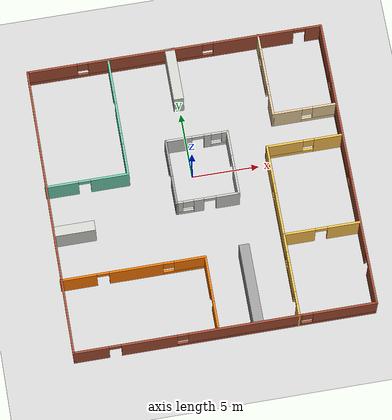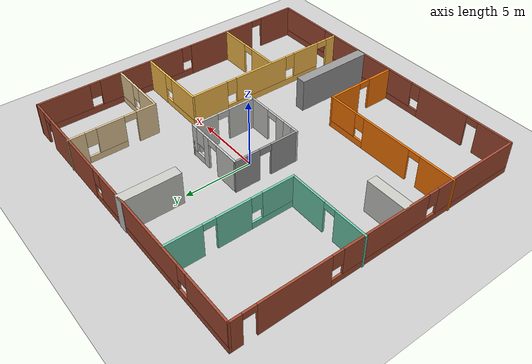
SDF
<sdf version="1.6">
 <world name="default">
  <model name="ground_plane">
   <static>1</static>
   <link name="link">
    <collision name="collision">
     <geometry><plane><normal>0 0 1</normal><size>100 100</size></plane></geometry>
     <surface><friction><ode><mu>100</mu><mu2>50</mu2></ode></friction></surface>
    </collision>
    <visual name="visual">
     <cast_shadows>0</cast_shadows>
     <geometry><plane><normal>0 0 1</normal><size>100 100</size></plane></geometry>
     <material>
      <script><uri>file://media/materials/scripts/gazebo.material</uri><name>Gazebo/Grey</name></script>
     </material>
    </visual>
   </link>
  </model>
  <model name="floor">
   <pose>0.248 -1.57026 0 0 -0 0</pose>
   <link name="Wall_24">
    <pose>-11.0156 -0.019394 0 0 -0 -1.5708</pose>
    <visual name="Wall_24_Visual_0">
     <pose>-10.5538 0 1.25 0 -0 0</pose>
     <geometry><box><size>0.892447 0.15 2.5</size></box></geometry>
     <material>
      <script><uri>file://media/materials/scripts/gazebo.material</uri><name>Gazebo/Bricks</name></script>
      <ambient>0.760784 0.662745 0.627451 1</ambient>
     </material>
     <meta><layer>0</layer></meta>
    </visual>
    <collision name="Wall_24_Collision_0">
     <geometry><box><size>0.892447 0.15 2.5</size></box></geometry>
     <pose>-10.5538 0 1.25 0 -0 0</pose>
    </collision>
    <visual name="Wall_24_Visual_1">
     <pose>-6.69897 0 1.25 0 -0 0</pose>
     <geometry><box><size>5.01718 0.15 2.5</size></box></geometry>
     <material>
      <script><uri>file://media/materials/scripts/gazebo.material</uri><name>Gazebo/Bricks</name></script>
      <ambient>0.760784 0.662745 0.627451 1</ambient>
     </material>
     <meta><layer>0</layer></meta>
    </visual>
    <collision name="Wall_24_Collision_1">
     <geometry><box><size>5.01718 0.15 2.5</size></box></geometry>
     <pose>-6.69897 0 1.25 0 -0 0</pose>
    </collision>
    <visual name="Wall_24_Visual_2">
     <pose>3.40481 0 0.25 0 -0 0</pose>
     <geometry><box><size>15.1904 0.15 0.5</size></box></geometry>
     <material>
      <script><uri>file://media/materials/scripts/gazebo.material</uri><name>Gazebo/Bricks</name></script>
      <ambient>0.760784 0.662745 0.627451 1</ambient>
     </material>
     <meta><layer>0</layer></meta>
    </visual>
    <collision name="Wall_24_Collision_2">
     <geometry><box><size>15.1904 0.15 0.5</size></box></geometry>
     <pose>3.40481 0 0.25 0 -0 0</pose>
    </collision>
    <visual name="Wall_24_Visual_3">
     <pose>-0.044953 0 1.5 0 -0 0</pose>
     <geometry><box><size>6.69085 0.15 2</size></box></geometry>
     <material>
      <script><uri>file://media/materials/scripts/gazebo.material</uri><name>Gazebo/Bricks</name></script>
      <ambient>0.760784 0.662745 0.627451 1</ambient>
     </material>
     <meta><layer>0</layer></meta>
    </visual>
    <collision name="Wall_24_Collision_3">
     <geometry><box><size>6.69085 0.15 2</size></box></geometry>
     <pose>-0.044953 0 1.5 0 -0 0</pose>
    </collision>
    <visual name="Wall_24_Visual_4">
     <pose>7.55023 0 1.5 0 -0 0</pose>
     <geometry><box><size>6.89953 0.15 2</size></box></geometry>
     <material>
      <script><uri>file://media/materials/scripts/gazebo.material</uri><name>Gazebo/Bricks</name></script>
      <ambient>0.760784 0.662745 0.627451 1</ambient>
     </material>
     <meta><layer>0</layer></meta>
    </visual>
    <collision name="Wall_24_Collision_4">
     <geometry><box><size>6.89953 0.15 2</size></box></geometry>
     <pose>7.55023 0 1.5 0 -0 0</pose>
    </collision>
    <visual name="Wall_24_Visual_5">
     <pose>-3.79038 0 1.9 0 -0 0</pose>
     <geometry><box><size>0.8 0.15 1.2</size></box></geometry>
     <material>
      <script><uri>file://media/materials/scripts/gazebo.material</uri><name>Gazebo/Bricks</name></script>
      <ambient>0.760784 0.662745 0.627451 1</ambient>
     </material>
     <meta><layer>0</layer></meta>
    </visual>
    <collision name="Wall_24_Collision_5">
     <geometry><box><size>0.8 0.15 1.2</size></box></geometry>
     <pose>-3.79038 0 1.9 0 -0 0</pose>
    </collision>
    <visual name="Wall_24_Visual_6">
     <pose>3.70047 0 1.9 0 -0 0</pose>
     <geometry><box><size>0.8 0.15 1.2</size></box></geometry>
     <material>
      <script><uri>file://media/materials/scripts/gazebo.material</uri><name>Gazebo/Bricks</name></script>
      <ambient>0.760784 0.662745 0.627451 1</ambient>
     </material>
     <meta><layer>0</layer></meta>
    </visual>
    <collision name="Wall_24_Collision_6">
     <geometry><box><size>0.8 0.15 1.2</size></box></geometry>
     <pose>3.70047 0 1.9 0 -0 0</pose>
    </collision>
    <visual name="Wall_24_Visual_7">
     <pose>-9.65755 0 2.25 0 -0 0</pose>
     <geometry><box><size>0.9 0.15 0.5</size></box></geometry>
     <material>
      <script><uri>file://media/materials/scripts/gazebo.material</uri><name>Gazebo/Bricks</name></script>
      <ambient>0.760784 0.662745 0.627451 1</ambient>
     </material>
     <meta><layer>0</layer></meta>
    </visual>
    <collision name="Wall_24_Collision_7">
     <geometry><box><size>0.9 0.15 0.5</size></box></geometry>
     <pose>-9.65755 0 2.25 0 -0 0</pose>
    </collision>
   </link>
   <link name="Wall_25">
    <pose>0.034373 -10.9444 0 0 -0 0</pose>
    <visual name="Wall_25_Visual_0">
     <pose>-9.80645 0 1.25 0 -0 0</pose>
     <geometry><box><size>2.63709 0.15 2.5</size></box></geometry>
     <material>
      <script><uri>file://media/materials/scripts/gazebo.material</uri><name>Gazebo/Bricks</name></script>
      <ambient>0.760784 0.662745 0.627451 1</ambient>
     </material>
     <meta><layer>0</layer></meta>
    </visual>
    <collision name="Wall_25_Collision_0">
     <geometry><box><size>2.63709 0.15 2.5</size></box></geometry>
     <pose>-9.80645 0 1.25 0 -0 0</pose>
    </collision>
    <visual name="Wall_25_Visual_1">
     <pose>-5.54747 0 1.25 0 -0 0</pose>
     <geometry><box><size>4.08088 0.15 2.5</size></box></geometry>
     <material>
      <script><uri>file://media/materials/scripts/gazebo.material</uri><name>Gazebo/Bricks</name></script>
      <ambient>0.760784 0.662745 0.627451 1</ambient>
     </material>
     <meta><layer>0</layer></meta>
    </visual>
    <collision name="Wall_25_Collision_1">
     <geometry><box><size>4.08088 0.15 2.5</size></box></geometry>
     <pose>-5.54747 0 1.25 0 -0 0</pose>
    </collision>
    <visual name="Wall_25_Visual_2">
     <pose>3.80898 0 0.25 0 -0 0</pose>
     <geometry><box><size>14.632 0.15 0.5</size></box></geometry>
     <material>
      <script><uri>file://media/materials/scripts/gazebo.material</uri><name>Gazebo/Bricks</name></script>
      <ambient>0.760784 0.662745 0.627451 1</ambient>
     </material>
     <meta><layer>0</layer></meta>
    </visual>
    <collision name="Wall_25_Collision_2">
     <geometry><box><size>14.632 0.15 0.5</size></box></geometry>
     <pose>3.80898 0 0.25 0 -0 0</pose>
    </collision>
    <visual name="Wall_25_Visual_3">
     <pose>1.44344 0 1.5 0 -0 0</pose>
     <geometry><box><size>8.30095 0.15 2</size></box></geometry>
     <material>
      <script><uri>file://media/materials/scripts/gazebo.material</uri><name>Gazebo/Bricks</name></script>
      <ambient>0.760784 0.662745 0.627451 1</ambient>
     </material>
     <meta><layer>0</layer></meta>
    </visual>
    <collision name="Wall_25_Collision_3">
     <geometry><box><size>8.30095 0.15 2</size></box></geometry>
     <pose>1.44344 0 1.5 0 -0 0</pose>
    </collision>
    <visual name="Wall_25_Visual_4">
     <pose>8.75946 0 1.5 0 -0 0</pose>
     <geometry><box><size>4.73108 0.15 2</size></box></geometry>
     <material>
      <script><uri>file://media/materials/scripts/gazebo.material</uri><name>Gazebo/Bricks</name></script>
      <ambient>0.760784 0.662745 0.627451 1</ambient>
     </material>
     <meta><layer>0</layer></meta>
    </visual>
    <collision name="Wall_25_Collision_4">
     <geometry><box><size>4.73108 0.15 2</size></box></geometry>
     <pose>8.75946 0 1.5 0 -0 0</pose>
    </collision>
    <visual name="Wall_25_Visual_5">
     <pose>-3.10703 0 1.9 0 -0 0</pose>
     <geometry><box><size>0.8 0.15 1.2</size></box></geometry>
     <material>
      <script><uri>file://media/materials/scripts/gazebo.material</uri><name>Gazebo/Bricks</name></script>
      <ambient>0.760784 0.662745 0.627451 1</ambient>
     </material>
     <meta><layer>0</layer></meta>
    </visual>
    <collision name="Wall_25_Collision_5">
     <geometry><box><size>0.8 0.15 1.2</size></box></geometry>
     <pose>-3.10703 0 1.9 0 -0 0</pose>
    </collision>
    <visual name="Wall_25_Visual_6">
     <pose>5.99392 0 1.9 0 -0 0</pose>
     <geometry><box><size>0.8 0.15 1.2</size></box></geometry>
     <material>
      <script><uri>file://media/materials/scripts/gazebo.material</uri><name>Gazebo/Bricks</name></script>
      <ambient>0.760784 0.662745 0.627451 1</ambient>
     </material>
     <meta><layer>0</layer></meta>
    </visual>
    <collision name="Wall_25_Collision_6">
     <geometry><box><size>0.8 0.15 1.2</size></box></geometry>
     <pose>5.99392 0 1.9 0 -0 0</pose>
    </collision>
    <visual name="Wall_25_Visual_7">
     <pose>-8.03791 0 2.25 0 -0 0</pose>
     <geometry><box><size>0.9 0.15 0.5</size></box></geometry>
     <material>
      <script><uri>file://media/materials/scripts/gazebo.material</uri><name>Gazebo/Bricks</name></script>
      <ambient>0.760784 0.662745 0.627451 1</ambient>
     </material>
     <meta><layer>0</layer></meta>
    </visual>
    <collision name="Wall_25_Collision_7">
     <geometry><box><size>0.9 0.15 0.5</size></box></geometry>
     <pose>-8.03791 0 2.25 0 -0 0</pose>
    </collision>
   </link>
   <link name="Wall_26">
    <pose>11.0844 -0.019394 0 0 -0 1.5708</pose>
    <visual name="Wall_26_Visual_0">
     <pose>-9.51526 0 1.25 0 -0 0</pose>
     <geometry><box><size>2.96947 0.15 2.5</size></box></geometry>
     <material>
      <script><uri>file://media/materials/scripts/gazebo.material</uri><name>Gazebo/Bricks</name></script>
      <ambient>1 0.764706 0.305882 1</ambient>
     </material>
     <meta><layer>0</layer></meta>
    </visual>
    <collision name="Wall_26_Collision_0">
     <geometry><box><size>2.96947 0.15 2.5</size></box></geometry>
     <pose>-9.51526 0 1.25 0 -0 0</pose>
    </collision>
    <visual name="Wall_26_Visual_1">
     <pose>-4.23534 0 1.25 0 -0 0</pose>
     <geometry><box><size>5.79037 0.15 2.5</size></box></geometry>
     <material>
      <script><uri>file://media/materials/scripts/gazebo.material</uri><name>Gazebo/Bricks</name></script>
      <ambient>1 0.764706 0.305882 1</ambient>
     </material>
     <meta><layer>0</layer></meta>
    </visual>
    <collision name="Wall_26_Collision_1">
     <geometry><box><size>5.79037 0.15 2.5</size></box></geometry>
     <pose>-4.23534 0 1.25 0 -0 0</pose>
    </collision>
    <visual name="Wall_26_Visual_2">
     <pose>4.82992 0 0.25 0 -0 0</pose>
     <geometry><box><size>12.3402 0.15 0.5</size></box></geometry>
     <material>
      <script><uri>file://media/materials/scripts/gazebo.material</uri><name>Gazebo/Bricks</name></script>
      <ambient>1 0.764706 0.305882 1</ambient>
     </material>
     <meta><layer>0</layer></meta>
    </visual>
    <collision name="Wall_26_Collision_2">
     <geometry><box><size>12.3402 0.15 0.5</size></box></geometry>
     <pose>4.82992 0 0.25 0 -0 0</pose>
    </collision>
    <visual name="Wall_26_Visual_3">
     <pose>2.88033 0 1.5 0 -0 0</pose>
     <geometry><box><size>6.84097 0.15 2</size></box></geometry>
     <material>
      <script><uri>file://media/materials/scripts/gazebo.material</uri><name>Gazebo/Bricks</name></script>
      <ambient>1 0.764706 0.305882 1</ambient>
     </material>
     <meta><layer>0</layer></meta>
    </visual>
    <collision name="Wall_26_Collision_3">
     <geometry><box><size>6.84097 0.15 2</size></box></geometry>
     <pose>2.88033 0 1.5 0 -0 0</pose>
    </collision>
    <visual name="Wall_26_Visual_4">
     <pose>9.05041 0 1.5 0 -0 0</pose>
     <geometry><box><size>3.89918 0.15 2</size></box></geometry>
     <material>
      <script><uri>file://media/materials/scripts/gazebo.material</uri><name>Gazebo/Bricks</name></script>
      <ambient>1 0.764706 0.305882 1</ambient>
     </material>
     <meta><layer>0</layer></meta>
    </visual>
    <collision name="Wall_26_Collision_4">
     <geometry><box><size>3.89918 0.15 2</size></box></geometry>
     <pose>9.05041 0 1.5 0 -0 0</pose>
    </collision>
    <visual name="Wall_26_Visual_5">
     <pose>-0.940157 0 1.9 0 -0 0</pose>
     <geometry><box><size>0.8 0.15 1.2</size></box></geometry>
     <material>
      <script><uri>file://media/materials/scripts/gazebo.material</uri><name>Gazebo/Bricks</name></script>
      <ambient>1 0.764706 0.305882 1</ambient>
     </material>
     <meta><layer>0</layer></meta>
    </visual>
    <collision name="Wall_26_Collision_5">
     <geometry><box><size>0.8 0.15 1.2</size></box></geometry>
     <pose>-0.940157 0 1.9 0 -0 0</pose>
    </collision>
    <visual name="Wall_26_Visual_6">
     <pose>6.70082 0 1.9 0 -0 0</pose>
     <geometry><box><size>0.8 0.15 1.2</size></box></geometry>
     <material>
      <script><uri>file://media/materials/scripts/gazebo.material</uri><name>Gazebo/Bricks</name></script>
      <ambient>1 0.764706 0.305882 1</ambient>
     </material>
     <meta><layer>0</layer></meta>
    </visual>
    <collision name="Wall_26_Collision_6">
     <geometry><box><size>0.8 0.15 1.2</size></box></geometry>
     <pose>6.70082 0 1.9 0 -0 0</pose>
    </collision>
    <visual name="Wall_26_Visual_7">
     <pose>-7.58053 0 2.25 0 -0 0</pose>
     <geometry><box><size>0.9 0.15 0.5</size></box></geometry>
     <material>
      <script><uri>file://media/materials/scripts/gazebo.material</uri><name>Gazebo/Bricks</name></script>
      <ambient>1 0.764706 0.305882 1</ambient>
     </material>
     <meta><layer>0</layer></meta>
    </visual>
    <collision name="Wall_26_Collision_7">
     <geometry><box><size>0.9 0.15 0.5</size></box></geometry>
     <pose>-7.58053 0 2.25 0 -0 0</pose>
    </collision>
   </link>
   <link name="Wall_27">
    <pose>0.034373 10.9056 0 0 -0 3.14159</pose>
    <visual name="Wall_27_Visual_0">
     <pose>-10.5011 0 1.25 0 -0 0</pose>
     <geometry><box><size>1.24782 0.15 2.5</size></box></geometry>
     <material>
      <script><uri>file://media/materials/scripts/gazebo.material</uri><name>Gazebo/Bricks</name></script>
      <ambient>1 0.764706 0.305882 1</ambient>
     </material>
     <meta><layer>0</layer></meta>
    </visual>
    <collision name="Wall_27_Collision_0">
     <geometry><box><size>1.24782 0.15 2.5</size></box></geometry>
     <pose>-10.5011 0 1.25 0 -0 0</pose>
    </collision>
    <visual name="Wall_27_Visual_1">
     <pose>-5.94146 0 1.25 0 -0 0</pose>
     <geometry><box><size>6.07144 0.15 2.5</size></box></geometry>
     <material>
      <script><uri>file://media/materials/scripts/gazebo.material</uri><name>Gazebo/Bricks</name></script>
      <ambient>1 0.764706 0.305882 1</ambient>
     </material>
     <meta><layer>0</layer></meta>
    </visual>
    <collision name="Wall_27_Collision_1">
     <geometry><box><size>6.07144 0.15 2.5</size></box></geometry>
     <pose>-5.94146 0 1.25 0 -0 0</pose>
    </collision>
    <visual name="Wall_27_Visual_2">
     <pose>4.10963 0 0.25 0 -0 0</pose>
     <geometry><box><size>14.0307 0.15 0.5</size></box></geometry>
     <material>
      <script><uri>file://media/materials/scripts/gazebo.material</uri><name>Gazebo/Bricks</name></script>
      <ambient>1 0.764706 0.305882 1</ambient>
     </material>
     <meta><layer>0</layer></meta>
    </visual>
    <collision name="Wall_27_Collision_2">
     <geometry><box><size>14.0307 0.15 0.5</size></box></geometry>
     <pose>4.10963 0 0.25 0 -0 0</pose>
    </collision>
    <visual name="Wall_27_Visual_3">
     <pose>2.21603 0 1.5 0 -0 0</pose>
     <geometry><box><size>8.64354 0.15 2</size></box></geometry>
     <material>
      <script><uri>file://media/materials/scripts/gazebo.material</uri><name>Gazebo/Bricks</name></script>
      <ambient>1 0.764706 0.305882 1</ambient>
     </material>
     <meta><layer>0</layer></meta>
    </visual>
    <collision name="Wall_27_Collision_3">
     <geometry><box><size>8.64354 0.15 2</size></box></geometry>
     <pose>2.21603 0 1.5 0 -0 0</pose>
    </collision>
    <visual name="Wall_27_Visual_4">
     <pose>9.2314 0 1.5 0 -0 0</pose>
     <geometry><box><size>3.7872 0.15 2</size></box></geometry>
     <material>
      <script><uri>file://media/materials/scripts/gazebo.material</uri><name>Gazebo/Bricks</name></script>
      <ambient>1 0.764706 0.305882 1</ambient>
     </material>
     <meta><layer>0</layer></meta>
    </visual>
    <collision name="Wall_27_Collision_4">
     <geometry><box><size>3.7872 0.15 2</size></box></geometry>
     <pose>9.2314 0 1.5 0 -0 0</pose>
    </collision>
    <visual name="Wall_27_Visual_5">
     <pose>-2.50574 0 1.9 0 -0 0</pose>
     <geometry><box><size>0.8 0.15 1.2</size></box></geometry>
     <material>
      <script><uri>file://media/materials/scripts/gazebo.material</uri><name>Gazebo/Bricks</name></script>
      <ambient>1 0.764706 0.305882 1</ambient>
     </material>
     <meta><layer>0</layer></meta>
    </visual>
    <collision name="Wall_27_Collision_5">
     <geometry><box><size>0.8 0.15 1.2</size></box></geometry>
     <pose>-2.50574 0 1.9 0 -0 0</pose>
    </collision>
    <visual name="Wall_27_Visual_6">
     <pose>6.9378 0 1.9 0 -0 0</pose>
     <geometry><box><size>0.8 0.15 1.2</size></box></geometry>
     <material>
      <script><uri>file://media/materials/scripts/gazebo.material</uri><name>Gazebo/Bricks</name></script>
      <ambient>1 0.764706 0.305882 1</ambient>
     </material>
     <meta><layer>0</layer></meta>
    </visual>
    <collision name="Wall_27_Collision_6">
     <geometry><box><size>0.8 0.15 1.2</size></box></geometry>
     <pose>6.9378 0 1.9 0 -0 0</pose>
    </collision>
    <visual name="Wall_27_Visual_7">
     <pose>-9.42718 0 2.25 0 -0 0</pose>
     <geometry><box><size>0.9 0.15 0.5</size></box></geometry>
     <material>
      <script><uri>file://media/materials/scripts/gazebo.material</uri><name>Gazebo/Bricks</name></script>
      <ambient>1 0.764706 0.305882 1</ambient>
     </material>
     <meta><layer>0</layer></meta>
    </visual>
    <collision name="Wall_27_Collision_7">
     <geometry><box><size>0.9 0.15 0.5</size></box></geometry>
     <pose>-9.42718 0 2.25 0 -0 0</pose>
    </collision>
   </link>
   <link name="Wall_35">
    <pose>6.33295 7.78232 0 0 -0 -1.5708</pose>
    <visual name="Wall_35_Visual_0">
     <pose>-2.62794 0 1.25 0 -0 0</pose>
     <geometry><box><size>1.24413 0.15 2.5</size></box></geometry>
     <material>
      <script><uri>file://media/materials/scripts/gazebo.material</uri><name>Gazebo/Grey</name></script>
      <ambient>0.921569 0.807843 0.615686 1</ambient>
     </material>
     <meta><layer>0</layer></meta>
    </visual>
    <collision name="Wall_35_Collision_0">
     <geometry><box><size>1.24413 0.15 2.5</size></box></geometry>
     <pose>-2.62794 0 1.25 0 -0 0</pose>
    </collision>
    <visual name="Wall_35_Visual_1">
     <pose>2.48543 0 1.25 0 -0 0</pose>
     <geometry><box><size>1.52914 0.15 2.5</size></box></geometry>
     <material>
      <script><uri>file://media/materials/scripts/gazebo.material</uri><name>Gazebo/Grey</name></script>
      <ambient>0.921569 0.807843 0.615686 1</ambient>
     </material>
     <meta><layer>0</layer></meta>
    </visual>
    <collision name="Wall_35_Collision_1">
     <geometry><box><size>1.52914 0.15 2.5</size></box></geometry>
     <pose>2.48543 0 1.25 0 -0 0</pose>
    </collision>
    <visual name="Wall_35_Visual_2">
     <pose>-0.592504 0 0.25 0 -0 0</pose>
     <geometry><box><size>2.82674 0.15 0.5</size></box></geometry>
     <material>
      <script><uri>file://media/materials/scripts/gazebo.material</uri><name>Gazebo/Grey</name></script>
      <ambient>0.921569 0.807843 0.615686 1</ambient>
     </material>
     <meta><layer>0</layer></meta>
    </visual>
    <collision name="Wall_35_Collision_2">
     <geometry><box><size>2.82674 0.15 0.5</size></box></geometry>
     <pose>-0.592504 0 0.25 0 -0 0</pose>
    </collision>
    <visual name="Wall_35_Visual_3">
     <pose>-0.192504 0 1.5 0 -0 0</pose>
     <geometry><box><size>2.02673 0.15 2</size></box></geometry>
     <material>
      <script><uri>file://media/materials/scripts/gazebo.material</uri><name>Gazebo/Grey</name></script>
      <ambient>0.921569 0.807843 0.615686 1</ambient>
     </material>
     <meta><layer>0</layer></meta>
    </visual>
    <collision name="Wall_35_Collision_3">
     <geometry><box><size>2.02673 0.15 2</size></box></geometry>
     <pose>-0.192504 0 1.5 0 -0 0</pose>
    </collision>
    <visual name="Wall_35_Visual_4">
     <pose>-1.60587 0 1.9 0 -0 0</pose>
     <geometry><box><size>0.8 0.15 1.2</size></box></geometry>
     <material>
      <script><uri>file://media/materials/scripts/gazebo.material</uri><name>Gazebo/Grey</name></script>
      <ambient>0.921569 0.807843 0.615686 1</ambient>
     </material>
     <meta><layer>0</layer></meta>
    </visual>
    <collision name="Wall_35_Collision_4">
     <geometry><box><size>0.8 0.15 1.2</size></box></geometry>
     <pose>-1.60587 0 1.9 0 -0 0</pose>
    </collision>
    <visual name="Wall_35_Visual_5">
     <pose>1.27086 0 2.25 0 -0 0</pose>
     <geometry><box><size>0.9 0.15 0.5</size></box></geometry>
     <material>
      <script><uri>file://media/materials/scripts/gazebo.material</uri><name>Gazebo/Grey</name></script>
      <ambient>0.921569 0.807843 0.615686 1</ambient>
     </material>
     <meta><layer>0</layer></meta>
    </visual>
    <collision name="Wall_35_Collision_5">
     <geometry><box><size>0.9 0.15 0.5</size></box></geometry>
     <pose>1.27086 0 2.25 0 -0 0</pose>
    </collision>
   </link>
   <link name="Wall_36">
    <pose>8.63295 4.60732 0 0 -0 0</pose>
    <visual name="Wall_36_Visual_0">
     <pose>-1.25605 0 1.25 0 -0 0</pose>
     <geometry><box><size>2.23791 0.15 2.5</size></box></geometry>
     <material>
      <script><uri>file://media/materials/scripts/gazebo.material</uri><name>Gazebo/Grey</name></script>
      <ambient>0.921569 0.807843 0.615686 1</ambient>
     </material>
     <meta><layer>0</layer></meta>
    </visual>
    <collision name="Wall_36_Collision_0">
     <geometry><box><size>2.23791 0.15 2.5</size></box></geometry>
     <pose>-1.25605 0 1.25 0 -0 0</pose>
    </collision>
    <visual name="Wall_36_Visual_1">
     <pose>1.11895 0 0.25 0 -0 0</pose>
     <geometry><box><size>2.51209 0.15 0.5</size></box></geometry>
     <material>
      <script><uri>file://media/materials/scripts/gazebo.material</uri><name>Gazebo/Grey</name></script>
      <ambient>0.921569 0.807843 0.615686 1</ambient>
     </material>
     <meta><layer>0</layer></meta>
    </visual>
    <collision name="Wall_36_Collision_1">
     <geometry><box><size>2.51209 0.15 0.5</size></box></geometry>
     <pose>1.11895 0 0.25 0 -0 0</pose>
    </collision>
    <visual name="Wall_36_Visual_2">
     <pose>1.51896 0 1.5 0 -0 0</pose>
     <geometry><box><size>1.71209 0.15 2</size></box></geometry>
     <material>
      <script><uri>file://media/materials/scripts/gazebo.material</uri><name>Gazebo/Grey</name></script>
      <ambient>0.921569 0.807843 0.615686 1</ambient>
     </material>
     <meta><layer>0</layer></meta>
    </visual>
    <collision name="Wall_36_Collision_2">
     <geometry><box><size>1.71209 0.15 2</size></box></geometry>
     <pose>1.51896 0 1.5 0 -0 0</pose>
    </collision>
    <visual name="Wall_36_Visual_3">
     <pose>0.26291 0 1.9 0 -0 0</pose>
     <geometry><box><size>0.8 0.15 1.2</size></box></geometry>
     <material>
      <script><uri>file://media/materials/scripts/gazebo.material</uri><name>Gazebo/Grey</name></script>
      <ambient>0.921569 0.807843 0.615686 1</ambient>
     </material>
     <meta><layer>0</layer></meta>
    </visual>
    <collision name="Wall_36_Collision_3">
     <geometry><box><size>0.8 0.15 1.2</size></box></geometry>
     <pose>0.26291 0 1.9 0 -0 0</pose>
    </collision>
   </link>
   <link name="Wall_38">
    <pose>-4.96477 6.35501 0 0 -0 -1.5708</pose>
    <visual name="Wall_38_Visual_0">
     <pose>-3.29568 0 1.25 0 -0 0</pose>
     <geometry><box><size>2.65865 0.15 2.5</size></box></geometry>
     <material>
      <script><uri>file://media/materials/scripts/gazebo.material</uri><name>Gazebo/Grey</name></script>
      <ambient>0.435294 0.796078 0.67451 1</ambient>
     </material>
     <meta><layer>0</layer></meta>
    </visual>
    <collision name="Wall_38_Collision_0">
     <geometry><box><size>2.65865 0.15 2.5</size></box></geometry>
     <pose>-3.29568 0 1.25 0 -0 0</pose>
    </collision>
    <visual name="Wall_38_Visual_1">
     <pose>0.156233 0 1.25 0 -0 0</pose>
     <geometry><box><size>2.44517 0.15 2.5</size></box></geometry>
     <material>
      <script><uri>file://media/materials/scripts/gazebo.material</uri><name>Gazebo/Grey</name></script>
      <ambient>0.435294 0.796078 0.67451 1</ambient>
     </material>
     <meta><layer>0</layer></meta>
    </visual>
    <collision name="Wall_38_Collision_1">
     <geometry><box><size>2.44517 0.15 2.5</size></box></geometry>
     <pose>0.156233 0 1.25 0 -0 0</pose>
    </collision>
    <visual name="Wall_38_Visual_2">
     <pose>3.00191 0 0.25 0 -0 0</pose>
     <geometry><box><size>3.24618 0.15 0.5</size></box></geometry>
     <material>
      <script><uri>file://media/materials/scripts/gazebo.material</uri><name>Gazebo/Grey</name></script>
      <ambient>0.435294 0.796078 0.67451 1</ambient>
     </material>
     <meta><layer>0</layer></meta>
    </visual>
    <collision name="Wall_38_Collision_2">
     <geometry><box><size>3.24618 0.15 0.5</size></box></geometry>
     <pose>3.00191 0 0.25 0 -0 0</pose>
    </collision>
    <visual name="Wall_38_Visual_3">
     <pose>3.40191 0 1.5 0 -0 0</pose>
     <geometry><box><size>2.44618 0.15 2</size></box></geometry>
     <material>
      <script><uri>file://media/materials/scripts/gazebo.material</uri><name>Gazebo/Grey</name></script>
      <ambient>0.435294 0.796078 0.67451 1</ambient>
     </material>
     <meta><layer>0</layer></meta>
    </visual>
    <collision name="Wall_38_Collision_3">
     <geometry><box><size>2.44618 0.15 2</size></box></geometry>
     <pose>3.40191 0 1.5 0 -0 0</pose>
    </collision>
    <visual name="Wall_38_Visual_4">
     <pose>1.77882 0 1.9 0 -0 0</pose>
     <geometry><box><size>0.8 0.15 1.2</size></box></geometry>
     <material>
      <script><uri>file://media/materials/scripts/gazebo.material</uri><name>Gazebo/Grey</name></script>
      <ambient>0.435294 0.796078 0.67451 1</ambient>
     </material>
     <meta><layer>0</layer></meta>
    </visual>
    <collision name="Wall_38_Collision_4">
     <geometry><box><size>0.8 0.15 1.2</size></box></geometry>
     <pose>1.77882 0 1.9 0 -0 0</pose>
    </collision>
    <visual name="Wall_38_Visual_5">
     <pose>-1.51635 0 2.25 0 -0 0</pose>
     <geometry><box><size>0.9 0.15 0.5</size></box></geometry>
     <material>
      <script><uri>file://media/materials/scripts/gazebo.material</uri><name>Gazebo/Grey</name></script>
      <ambient>0.435294 0.796078 0.67451 1</ambient>
     </material>
     <meta><layer>0</layer></meta>
    </visual>
    <collision name="Wall_38_Collision_5">
     <geometry><box><size>0.9 0.15 0.5</size></box></geometry>
     <pose>-1.51635 0 2.25 0 -0 0</pose>
    </collision>
   </link>
   <link name="Wall_39">
    <pose>-8.01477 1.80501 0 0 -0 3.14159</pose>
    <visual name="Wall_39_Visual_0">
     <pose>-1.69107 0 1.25 0 -0 0</pose>
     <geometry><box><size>2.86787 0.15 2.5</size></box></geometry>
     <material>
      <script><uri>file://media/materials/scripts/gazebo.material</uri><name>Gazebo/Grey</name></script>
      <ambient>0.435294 0.796078 0.67451 1</ambient>
     </material>
     <meta><layer>0</layer></meta>
    </visual>
    <collision name="Wall_39_Collision_0">
     <geometry><box><size>2.86787 0.15 2.5</size></box></geometry>
     <pose>-1.69107 0 1.25 0 -0 0</pose>
    </collision>
    <visual name="Wall_39_Visual_1">
     <pose>1.88393 0 1.25 0 -0 0</pose>
     <geometry><box><size>2.48213 0.15 2.5</size></box></geometry>
     <material>
      <script><uri>file://media/materials/scripts/gazebo.material</uri><name>Gazebo/Grey</name></script>
      <ambient>0.435294 0.796078 0.67451 1</ambient>
     </material>
     <meta><layer>0</layer></meta>
    </visual>
    <collision name="Wall_39_Collision_1">
     <geometry><box><size>2.48213 0.15 2.5</size></box></geometry>
     <pose>1.88393 0 1.25 0 -0 0</pose>
    </collision>
    <visual name="Wall_39_Visual_2">
     <pose>0.192865 0 2.25 0 -0 0</pose>
     <geometry><box><size>0.9 0.15 0.5</size></box></geometry>
     <material>
      <script><uri>file://media/materials/scripts/gazebo.material</uri><name>Gazebo/Grey</name></script>
      <ambient>0.435294 0.796078 0.67451 1</ambient>
     </material>
     <meta><layer>0</layer></meta>
    </visual>
    <collision name="Wall_39_Collision_2">
     <geometry><box><size>0.9 0.15 0.5</size></box></geometry>
     <pose>0.192865 0 2.25 0 -0 0</pose>
    </collision>
   </link>
   <link name="Wall_41">
    <pose>-5.78437 -5.41392 0 0 -0 0</pose>
    <visual name="Wall_41_Visual_0">
     <pose>-4.01952 0 1.25 0 -0 0</pose>
     <geometry><box><size>2.71095 0.15 2.5</size></box></geometry>
     <material>
      <script><uri>file://media/materials/scripts/gazebo.material</uri><name>Gazebo/Grey</name></script>
      <ambient>0.996078 0.47451 0.0196078 1</ambient>
     </material>
     <meta><layer>0</layer></meta>
    </visual>
    <collision name="Wall_41_Collision_0">
     <geometry><box><size>2.71095 0.15 2.5</size></box></geometry>
     <pose>-4.01952 0 1.25 0 -0 0</pose>
    </collision>
    <visual name="Wall_41_Visual_1">
     <pose>0.21695 0 1.25 0 -0 0</pose>
     <geometry><box><size>3.96199 0.15 2.5</size></box></geometry>
     <material>
      <script><uri>file://media/materials/scripts/gazebo.material</uri><name>Gazebo/Grey</name></script>
      <ambient>0.996078 0.47451 0.0196078 1</ambient>
     </material>
     <meta><layer>0</layer></meta>
    </visual>
    <collision name="Wall_41_Collision_1">
     <geometry><box><size>3.96199 0.15 2.5</size></box></geometry>
     <pose>0.21695 0 1.25 0 -0 0</pose>
    </collision>
    <visual name="Wall_41_Visual_2">
     <pose>3.78647 0 0.25 0 -0 0</pose>
     <geometry><box><size>3.17705 0.15 0.5</size></box></geometry>
     <material>
      <script><uri>file://media/materials/scripts/gazebo.material</uri><name>Gazebo/Grey</name></script>
      <ambient>0.996078 0.47451 0.0196078 1</ambient>
     </material>
     <meta><layer>0</layer></meta>
    </visual>
    <collision name="Wall_41_Collision_2">
     <geometry><box><size>3.17705 0.15 0.5</size></box></geometry>
     <pose>3.78647 0 0.25 0 -0 0</pose>
    </collision>
    <visual name="Wall_41_Visual_3">
     <pose>4.18647 0 1.5 0 -0 0</pose>
     <geometry><box><size>2.37705 0.15 2</size></box></geometry>
     <material>
      <script><uri>file://media/materials/scripts/gazebo.material</uri><name>Gazebo/Grey</name></script>
      <ambient>0.996078 0.47451 0.0196078 1</ambient>
     </material>
     <meta><layer>0</layer></meta>
    </visual>
    <collision name="Wall_41_Collision_3">
     <geometry><box><size>2.37705 0.15 2</size></box></geometry>
     <pose>4.18647 0 1.5 0 -0 0</pose>
    </collision>
    <visual name="Wall_41_Visual_4">
     <pose>2.59795 0 1.9 0 -0 0</pose>
     <geometry><box><size>0.8 0.15 1.2</size></box></geometry>
     <material>
      <script><uri>file://media/materials/scripts/gazebo.material</uri><name>Gazebo/Grey</name></script>
      <ambient>0.996078 0.47451 0.0196078 1</ambient>
     </material>
     <meta><layer>0</layer></meta>
    </visual>
    <collision name="Wall_41_Collision_4">
     <geometry><box><size>0.8 0.15 1.2</size></box></geometry>
     <pose>2.59795 0 1.9 0 -0 0</pose>
    </collision>
    <visual name="Wall_41_Visual_5">
     <pose>-2.21405 0 2.25 0 -0 0</pose>
     <geometry><box><size>0.9 0.15 0.5</size></box></geometry>
     <material>
      <script><uri>file://media/materials/scripts/gazebo.material</uri><name>Gazebo/Grey</name></script>
      <ambient>0.996078 0.47451 0.0196078 1</ambient>
     </material>
     <meta><layer>0</layer></meta>
    </visual>
    <collision name="Wall_41_Collision_5">
     <geometry><box><size>0.9 0.15 0.5</size></box></geometry>
     <pose>-2.21405 0 2.25 0 -0 0</pose>
    </collision>
   </link>
   <link name="Wall_42">
    <pose>-0.484375 -8.08892 0 0 -0 -1.5708</pose>
    <visual name="Wall_42_Visual_0">
     <pose>-1.44683 0 1.25 0 -0 0</pose>
     <geometry><box><size>2.60634 0.15 2.5</size></box></geometry>
     <material>
      <script><uri>file://media/materials/scripts/gazebo.material</uri><name>Gazebo/Grey</name></script>
      <ambient>0.996078 0.47451 0.0196078 1</ambient>
     </material>
     <meta><layer>0</layer></meta>
    </visual>
    <collision name="Wall_42_Collision_0">
     <geometry><box><size>2.60634 0.15 2.5</size></box></geometry>
     <pose>-1.44683 0 1.25 0 -0 0</pose>
    </collision>
    <visual name="Wall_42_Visual_1">
     <pose>1.75317 0 1.25 0 -0 0</pose>
     <geometry><box><size>1.99366 0.15 2.5</size></box></geometry>
     <material>
      <script><uri>file://media/materials/scripts/gazebo.material</uri><name>Gazebo/Grey</name></script>
      <ambient>0.996078 0.47451 0.0196078 1</ambient>
     </material>
     <meta><layer>0</layer></meta>
    </visual>
    <collision name="Wall_42_Collision_1">
     <geometry><box><size>1.99366 0.15 2.5</size></box></geometry>
     <pose>1.75317 0 1.25 0 -0 0</pose>
    </collision>
    <visual name="Wall_42_Visual_2">
     <pose>0.306344 0 2.25 0 -0 0</pose>
     <geometry><box><size>0.9 0.15 0.5</size></box></geometry>
     <material>
      <script><uri>file://media/materials/scripts/gazebo.material</uri><name>Gazebo/Grey</name></script>
      <ambient>0.996078 0.47451 0.0196078 1</ambient>
     </material>
     <meta><layer>0</layer></meta>
    </visual>
    <collision name="Wall_42_Collision_2">
     <geometry><box><size>0.9 0.15 0.5</size></box></geometry>
     <pose>0.306344 0 2.25 0 -0 0</pose>
    </collision>
   </link>
   <link name="Wall_49">
    <pose>0.463971 3.82841 0 0 -0 0</pose>
    <visual name="Wall_49_Visual_0">
     <pose>-1.36562 0 1.25 0 -0 0</pose>
     <geometry><box><size>2.01877 0.15 2.5</size></box></geometry>
     <material>
      <script><uri>file://media/materials/scripts/gazebo.material</uri><name>Gazebo/CeilingTiled</name></script>
      <ambient>1 1 1 1</ambient>
     </material>
     <meta><layer>0</layer></meta>
    </visual>
    <collision name="Wall_49_Collision_0">
     <geometry><box><size>2.01877 0.15 2.5</size></box></geometry>
     <pose>-1.36562 0 1.25 0 -0 0</pose>
    </collision>
    <visual name="Wall_49_Visual_1">
     <pose>0.806946 0 1.25 0 -0 0</pose>
     <geometry><box><size>0.526351 0.15 2.5</size></box></geometry>
     <material>
      <script><uri>file://media/materials/scripts/gazebo.material</uri><name>Gazebo/CeilingTiled</name></script>
      <ambient>1 1 1 1</ambient>
     </material>
     <meta><layer>0</layer></meta>
    </visual>
    <collision name="Wall_49_Collision_1">
     <geometry><box><size>0.526351 0.15 2.5</size></box></geometry>
     <pose>0.806946 0 1.25 0 -0 0</pose>
    </collision>
    <visual name="Wall_49_Visual_2">
     <pose>1.72256 0 0.25 0 -0 0</pose>
     <geometry><box><size>1.30488 0.15 0.5</size></box></geometry>
     <material>
      <script><uri>file://media/materials/scripts/gazebo.material</uri><name>Gazebo/CeilingTiled</name></script>
      <ambient>1 1 1 1</ambient>
     </material>
     <meta><layer>0</layer></meta>
    </visual>
    <collision name="Wall_49_Collision_2">
     <geometry><box><size>1.30488 0.15 0.5</size></box></geometry>
     <pose>1.72256 0 0.25 0 -0 0</pose>
    </collision>
    <visual name="Wall_49_Visual_3">
     <pose>2.12256 0 1.5 0 -0 0</pose>
     <geometry><box><size>0.504879 0.15 2</size></box></geometry>
     <material>
      <script><uri>file://media/materials/scripts/gazebo.material</uri><name>Gazebo/CeilingTiled</name></script>
      <ambient>1 1 1 1</ambient>
     </material>
     <meta><layer>0</layer></meta>
    </visual>
    <collision name="Wall_49_Collision_3">
     <geometry><box><size>0.504879 0.15 2</size></box></geometry>
     <pose>2.12256 0 1.5 0 -0 0</pose>
    </collision>
    <visual name="Wall_49_Visual_4">
     <pose>1.47012 0 1.9 0 -0 0</pose>
     <geometry><box><size>0.8 0.15 1.2</size></box></geometry>
     <material>
      <script><uri>file://media/materials/scripts/gazebo.material</uri><name>Gazebo/CeilingTiled</name></script>
      <ambient>1 1 1 1</ambient>
     </material>
     <meta><layer>0</layer></meta>
    </visual>
    <collision name="Wall_49_Collision_4">
     <geometry><box><size>0.8 0.15 1.2</size></box></geometry>
     <pose>1.47012 0 1.9 0 -0 0</pose>
    </collision>
    <visual name="Wall_49_Visual_5">
     <pose>0.093771 0 2.25 0 -0 0</pose>
     <geometry><box><size>0.9 0.15 0.5</size></box></geometry>
     <material>
      <script><uri>file://media/materials/scripts/gazebo.material</uri><name>Gazebo/CeilingTiled</name></script>
      <ambient>1 1 1 1</ambient>
     </material>
     <meta><layer>0</layer></meta>
    </visual>
    <collision name="Wall_49_Collision_5">
     <geometry><box><size>0.9 0.15 0.5</size></box></geometry>
     <pose>0.093771 0 2.25 0 -0 0</pose>
    </collision>
   </link>
   <link name="Wall_50">
    <pose>2.76397 1.40341 0 0 -0 -1.5708</pose>
    <visual name="Wall_50_Visual_0">
     <pose>-1.52035 0 1.25 0 -0 0</pose>
     <geometry><box><size>1.9593 0.15 2.5</size></box></geometry>
     <material>
      <script><uri>file://media/materials/scripts/gazebo.material</uri><name>Gazebo/CeilingTiled</name></script>
      <ambient>1 1 1 1</ambient>
     </material>
     <meta><layer>0</layer></meta>
    </visual>
    <collision name="Wall_50_Collision_0">
     <geometry><box><size>1.9593 0.15 2.5</size></box></geometry>
     <pose>-1.52035 0 1.25 0 -0 0</pose>
    </collision>
    <visual name="Wall_50_Visual_1">
     <pose>1.42965 0 1.25 0 -0 0</pose>
     <geometry><box><size>2.1407 0.15 2.5</size></box></geometry>
     <material>
      <script><uri>file://media/materials/scripts/gazebo.material</uri><name>Gazebo/CeilingTiled</name></script>
      <ambient>1 1 1 1</ambient>
     </material>
     <meta><layer>0</layer></meta>
    </visual>
    <collision name="Wall_50_Collision_1">
     <geometry><box><size>2.1407 0.15 2.5</size></box></geometry>
     <pose>1.42965 0 1.25 0 -0 0</pose>
    </collision>
    <visual name="Wall_50_Visual_2">
     <pose>-0.090702 0 2.25 0 -0 0</pose>
     <geometry><box><size>0.9 0.15 0.5</size></box></geometry>
     <material>
      <script><uri>file://media/materials/scripts/gazebo.material</uri><name>Gazebo/CeilingTiled</name></script>
      <ambient>1 1 1 1</ambient>
     </material>
     <meta><layer>0</layer></meta>
    </visual>
    <collision name="Wall_50_Collision_2">
     <geometry><box><size>0.9 0.15 0.5</size></box></geometry>
     <pose>-0.090702 0 2.25 0 -0 0</pose>
    </collision>
   </link>
   <link name="Wall_51">
    <pose>0.463971 -1.02159 0 0 -0 3.14159</pose>
    <visual name="Wall_51_Visual_0">
     <pose>-1.48912 0 1.25 0 -0 0</pose>
     <geometry><box><size>1.77176 0.15 2.5</size></box></geometry>
     <material>
      <script><uri>file://media/materials/scripts/gazebo.material</uri><name>Gazebo/CeilingTiled</name></script>
      <ambient>0.760784 0.662745 0.627451 1</ambient>
     </material>
     <meta><layer>0</layer></meta>
    </visual>
    <collision name="Wall_51_Collision_0">
     <geometry><box><size>1.77176 0.15 2.5</size></box></geometry>
     <pose>-1.48912 0 1.25 0 -0 0</pose>
    </collision>
    <visual name="Wall_51_Visual_1">
     <pose>0.668741 0 1.25 0 -0 0</pose>
     <geometry><box><size>0.743969 0.15 2.5</size></box></geometry>
     <material>
      <script><uri>file://media/materials/scripts/gazebo.material</uri><name>Gazebo/CeilingTiled</name></script>
      <ambient>0.760784 0.662745 0.627451 1</ambient>
     </material>
     <meta><layer>0</layer></meta>
    </visual>
    <collision name="Wall_51_Collision_1">
     <geometry><box><size>0.743969 0.15 2.5</size></box></geometry>
     <pose>0.668741 0 1.25 0 -0 0</pose>
    </collision>
    <visual name="Wall_51_Visual_2">
     <pose>1.70786 0 0.25 0 -0 0</pose>
     <geometry><box><size>1.33427 0.15 0.5</size></box></geometry>
     <material>
      <script><uri>file://media/materials/scripts/gazebo.material</uri><name>Gazebo/CeilingTiled</name></script>
      <ambient>0.760784 0.662745 0.627451 1</ambient>
     </material>
     <meta><layer>0</layer></meta>
    </visual>
    <collision name="Wall_51_Collision_2">
     <geometry><box><size>1.33427 0.15 0.5</size></box></geometry>
     <pose>1.70786 0 0.25 0 -0 0</pose>
    </collision>
    <visual name="Wall_51_Visual_3">
     <pose>2.10786 0 1.5 0 -0 0</pose>
     <geometry><box><size>0.534274 0.15 2</size></box></geometry>
     <material>
      <script><uri>file://media/materials/scripts/gazebo.material</uri><name>Gazebo/CeilingTiled</name></script>
      <ambient>0.760784 0.662745 0.627451 1</ambient>
     </material>
     <meta><layer>0</layer></meta>
    </visual>
    <collision name="Wall_51_Collision_3">
     <geometry><box><size>0.534274 0.15 2</size></box></geometry>
     <pose>2.10786 0 1.5 0 -0 0</pose>
    </collision>
    <visual name="Wall_51_Visual_4">
     <pose>1.44073 0 1.9 0 -0 0</pose>
     <geometry><box><size>0.8 0.15 1.2</size></box></geometry>
     <material>
      <script><uri>file://media/materials/scripts/gazebo.material</uri><name>Gazebo/CeilingTiled</name></script>
      <ambient>0.760784 0.662745 0.627451 1</ambient>
     </material>
     <meta><layer>0</layer></meta>
    </visual>
    <collision name="Wall_51_Collision_4">
     <geometry><box><size>0.8 0.15 1.2</size></box></geometry>
     <pose>1.44073 0 1.9 0 -0 0</pose>
    </collision>
    <visual name="Wall_51_Visual_5">
     <pose>-0.153243 0 2.25 0 -0 0</pose>
     <geometry><box><size>0.9 0.15 0.5</size></box></geometry>
     <material>
      <script><uri>file://media/materials/scripts/gazebo.material</uri><name>Gazebo/CeilingTiled</name></script>
      <ambient>0.760784 0.662745 0.627451 1</ambient>
     </material>
     <meta><layer>0</layer></meta>
    </visual>
    <collision name="Wall_51_Collision_5">
     <geometry><box><size>0.9 0.15 0.5</size></box></geometry>
     <pose>-0.153243 0 2.25 0 -0 0</pose>
    </collision>
   </link>
   <link name="Wall_52">
    <pose>-1.83603 1.40341 0 0 -0 1.5708</pose>
    <visual name="Wall_52_Visual_0">
     <pose>-1.41478 0 1.25 0 -0 0</pose>
     <geometry><box><size>2.17044 0.15 2.5</size></box></geometry>
     <material>
      <script><uri>file://media/materials/scripts/gazebo.material</uri><name>Gazebo/Grey</name></script>
      <ambient>1 1 1 1</ambient>
     </material>
     <meta><layer>0</layer></meta>
    </visual>
    <collision name="Wall_52_Collision_0">
     <geometry><box><size>2.17044 0.15 2.5</size></box></geometry>
     <pose>-1.41478 0 1.25 0 -0 0</pose>
    </collision>
    <visual name="Wall_52_Visual_1">
     <pose>1.53522 0 1.25 0 -0 0</pose>
     <geometry><box><size>1.92956 0.15 2.5</size></box></geometry>
     <material>
      <script><uri>file://media/materials/scripts/gazebo.material</uri><name>Gazebo/Grey</name></script>
      <ambient>1 1 1 1</ambient>
     </material>
     <meta><layer>0</layer></meta>
    </visual>
    <collision name="Wall_52_Collision_1">
     <geometry><box><size>1.92956 0.15 2.5</size></box></geometry>
     <pose>1.53522 0 1.25 0 -0 0</pose>
    </collision>
    <visual name="Wall_52_Visual_2">
     <pose>0.120438 0 2.25 0 -0 0</pose>
     <geometry><box><size>0.9 0.15 0.5</size></box></geometry>
     <material>
      <script><uri>file://media/materials/scripts/gazebo.material</uri><name>Gazebo/Grey</name></script>
      <ambient>1 1 1 1</ambient>
     </material>
     <meta><layer>0</layer></meta>
    </visual>
    <collision name="Wall_52_Collision_2">
     <geometry><box><size>0.9 0.15 0.5</size></box></geometry>
     <pose>0.120438 0 2.25 0 -0 0</pose>
    </collision>
   </link>
   <link name="Wall_54">
    <pose>8.23049 2.14268 0 0 -0 3.14159</pose>
    <visual name="Wall_54_Visual_0">
     <pose>-1.78675 0 1.25 0 -0 0</pose>
     <geometry><box><size>2.17651 0.15 2.5</size></box></geometry>
     <material>
      <script><uri>file://media/materials/scripts/gazebo.material</uri><name>Gazebo/Grey</name></script>
      <ambient>1 0.764706 0.305882 1</ambient>
     </material>
     <meta><layer>0</layer></meta>
    </visual>
    <collision name="Wall_54_Collision_0">
     <geometry><box><size>2.17651 0.15 2.5</size></box></geometry>
     <pose>-1.78675 0 1.25 0 -0 0</pose>
    </collision>
    <visual name="Wall_54_Visual_1">
     <pose>1.08825 0 0.25 0 -0 0</pose>
     <geometry><box><size>3.57349 0.15 0.5</size></box></geometry>
     <material>
      <script><uri>file://media/materials/scripts/gazebo.material</uri><name>Gazebo/Grey</name></script>
      <ambient>1 0.764706 0.305882 1</ambient>
     </material>
     <meta><layer>0</layer></meta>
    </visual>
    <collision name="Wall_54_Collision_1">
     <geometry><box><size>3.57349 0.15 0.5</size></box></geometry>
     <pose>1.08825 0 0.25 0 -0 0</pose>
    </collision>
    <visual name="Wall_54_Visual_2">
     <pose>1.48826 0 1.5 0 -0 0</pose>
     <geometry><box><size>2.77349 0.15 2</size></box></geometry>
     <material>
      <script><uri>file://media/materials/scripts/gazebo.material</uri><name>Gazebo/Grey</name></script>
      <ambient>1 0.764706 0.305882 1</ambient>
     </material>
     <meta><layer>0</layer></meta>
    </visual>
    <collision name="Wall_54_Collision_2">
     <geometry><box><size>2.77349 0.15 2</size></box></geometry>
     <pose>1.48826 0 1.5 0 -0 0</pose>
    </collision>
    <visual name="Wall_54_Visual_3">
     <pose>-0.298491 0 1.9 0 -0 0</pose>
     <geometry><box><size>0.8 0.15 1.2</size></box></geometry>
     <material>
      <script><uri>file://media/materials/scripts/gazebo.material</uri><name>Gazebo/Grey</name></script>
      <ambient>1 0.764706 0.305882 1</ambient>
     </material>
     <meta><layer>0</layer></meta>
    </visual>
    <collision name="Wall_54_Collision_3">
     <geometry><box><size>0.8 0.15 1.2</size></box></geometry>
     <pose>-0.298491 0 1.9 0 -0 0</pose>
    </collision>
   </link>
   <link name="Wall_55">
    <pose>5.43049 -4.40732 0 0 -0 -1.5708</pose>
    <visual name="Wall_55_Visual_0">
     <pose>-5.15015 0 1.25 0 -0 0</pose>
     <geometry><box><size>2.9497 0.15 2.5</size></box></geometry>
     <material>
      <script><uri>file://media/materials/scripts/gazebo.material</uri><name>Gazebo/Grey</name></script>
      <ambient>1 0.764706 0.305882 1</ambient>
     </material>
     <meta><layer>0</layer></meta>
    </visual>
    <collision name="Wall_55_Collision_0">
     <geometry><box><size>2.9497 0.15 2.5</size></box></geometry>
     <pose>-5.15015 0 1.25 0 -0 0</pose>
    </collision>
    <visual name="Wall_55_Visual_1">
     <pose>6.12968 0 1.25 0 -0 0</pose>
     <geometry><box><size>0.990647 0.15 2.5</size></box></geometry>
     <material>
      <script><uri>file://media/materials/scripts/gazebo.material</uri><name>Gazebo/Grey</name></script>
      <ambient>1 0.764706 0.305882 1</ambient>
     </material>
     <meta><layer>0</layer></meta>
    </visual>
    <collision name="Wall_55_Collision_1">
     <geometry><box><size>0.990647 0.15 2.5</size></box></geometry>
     <pose>6.12968 0 1.25 0 -0 0</pose>
    </collision>
    <visual name="Wall_55_Visual_2">
     <pose>0.529528 0 0.25 0 -0 0</pose>
     <geometry><box><size>8.40965 0.15 0.5</size></box></geometry>
     <material>
      <script><uri>file://media/materials/scripts/gazebo.material</uri><name>Gazebo/Grey</name></script>
      <ambient>1 0.764706 0.305882 1</ambient>
     </material>
     <meta><layer>0</layer></meta>
    </visual>
    <collision name="Wall_55_Collision_2">
     <geometry><box><size>8.40965 0.15 0.5</size></box></geometry>
     <pose>0.529528 0 0.25 0 -0 0</pose>
    </collision>
    <visual name="Wall_55_Visual_3">
     <pose>-0.614601 0 1.5 0 -0 0</pose>
     <geometry><box><size>4.52139 0.15 2</size></box></geometry>
     <material>
      <script><uri>file://media/materials/scripts/gazebo.material</uri><name>Gazebo/Grey</name></script>
      <ambient>1 0.764706 0.305882 1</ambient>
     </material>
     <meta><layer>0</layer></meta>
    </visual>
    <collision name="Wall_55_Collision_3">
     <geometry><box><size>4.52139 0.15 2</size></box></geometry>
     <pose>-0.614601 0 1.5 0 -0 0</pose>
    </collision>
    <visual name="Wall_55_Visual_4">
     <pose>3.59022 0 1.5 0 -0 0</pose>
     <geometry><box><size>2.28826 0.15 2</size></box></geometry>
     <material>
      <script><uri>file://media/materials/scripts/gazebo.material</uri><name>Gazebo/Grey</name></script>
      <ambient>1 0.764706 0.305882 1</ambient>
     </material>
     <meta><layer>0</layer></meta>
    </visual>
    <collision name="Wall_55_Collision_4">
     <geometry><box><size>2.28826 0.15 2</size></box></geometry>
     <pose>3.59022 0 1.5 0 -0 0</pose>
    </collision>
    <visual name="Wall_55_Visual_5">
     <pose>-3.2753 0 1.9 0 -0 0</pose>
     <geometry><box><size>0.8 0.15 1.2</size></box></geometry>
     <material>
      <script><uri>file://media/materials/scripts/gazebo.material</uri><name>Gazebo/Grey</name></script>
      <ambient>1 0.764706 0.305882 1</ambient>
     </material>
     <meta><layer>0</layer></meta>
    </visual>
    <collision name="Wall_55_Collision_5">
     <geometry><box><size>0.8 0.15 1.2</size></box></geometry>
     <pose>-3.2753 0 1.9 0 -0 0</pose>
    </collision>
    <visual name="Wall_55_Visual_6">
     <pose>2.0461 0 1.9 0 -0 0</pose>
     <geometry><box><size>0.8 0.15 1.2</size></box></geometry>
     <material>
      <script><uri>file://media/materials/scripts/gazebo.material</uri><name>Gazebo/Grey</name></script>
      <ambient>1 0.764706 0.305882 1</ambient>
     </material>
     <meta><layer>0</layer></meta>
    </visual>
    <collision name="Wall_55_Collision_6">
     <geometry><box><size>0.8 0.15 1.2</size></box></geometry>
     <pose>2.0461 0 1.9 0 -0 0</pose>
    </collision>
    <visual name="Wall_55_Visual_7">
     <pose>5.18435 0 2.25 0 -0 0</pose>
     <geometry><box><size>0.9 0.15 0.5</size></box></geometry>
     <material>
      <script><uri>file://media/materials/scripts/gazebo.material</uri><name>Gazebo/Grey</name></script>
      <ambient>1 0.764706 0.305882 1</ambient>
     </material>
     <meta><layer>0</layer></meta>
    </visual>
    <collision name="Wall_55_Collision_7">
     <geometry><box><size>0.9 0.15 0.5</size></box></geometry>
     <pose>5.18435 0 2.25 0 -0 0</pose>
    </collision>
   </link>
   <link name="Wall_57">
    <pose>8.23621 -4.7251 0 0 -0 0</pose>
    <visual name="Wall_57_Visual_0">
     <pose>-1.6753 0 1.25 0 -0 0</pose>
     <geometry><box><size>2.3994 0.15 2.5</size></box></geometry>
     <material>
      <script><uri>file://media/materials/scripts/gazebo.material</uri><name>Gazebo/Grey</name></script>
      <ambient>1 0.764706 0.305882 1</ambient>
     </material>
     <meta><layer>0</layer></meta>
    </visual>
    <collision name="Wall_57_Collision_0">
     <geometry><box><size>2.3994 0.15 2.5</size></box></geometry>
     <pose>-1.6753 0 1.25 0 -0 0</pose>
    </collision>
    <visual name="Wall_57_Visual_1">
     <pose>1.6497 0 1.25 0 -0 0</pose>
     <geometry><box><size>2.4506 0.15 2.5</size></box></geometry>
     <material>
      <script><uri>file://media/materials/scripts/gazebo.material</uri><name>Gazebo/Grey</name></script>
      <ambient>1 0.764706 0.305882 1</ambient>
     </material>
     <meta><layer>0</layer></meta>
    </visual>
    <collision name="Wall_57_Collision_1">
     <geometry><box><size>2.4506 0.15 2.5</size></box></geometry>
     <pose>1.6497 0 1.25 0 -0 0</pose>
    </collision>
    <visual name="Wall_57_Visual_2">
     <pose>-0.025599 0 2.25 0 -0 0</pose>
     <geometry><box><size>0.9 0.15 0.5</size></box></geometry>
     <material>
      <script><uri>file://media/materials/scripts/gazebo.material</uri><name>Gazebo/Grey</name></script>
      <ambient>1 0.764706 0.305882 1</ambient>
     </material>
     <meta><layer>0</layer></meta>
    </visual>
    <collision name="Wall_57_Collision_2">
     <geometry><box><size>0.9 0.15 0.5</size></box></geometry>
     <pose>-0.025599 0 2.25 0 -0 0</pose>
    </collision>
   </link>
   <link name="Wall_59">
    <collision name="Wall_59_Collision">
     <geometry><box><size>4.1 0.75 2.5</size></box></geometry>
     <pose>0 0 1.25 0 -0 0</pose>
    </collision>
    <visual name="Wall_59_Visual">
     <pose>0 0 1.25 0 -0 0</pose>
     <geometry><box><size>4.1 0.75 2.5</size></box></geometry>
     <material>
      <script><uri>file://media/materials/scripts/gazebo.material</uri><name>Gazebo/CeilingTiled</name></script>
      <ambient>1 1 1 1</ambient>
     </material>
     <meta><layer>0</layer></meta>
    </visual>
    <pose>-0.329426 8.96966 0 0 -0 -1.5708</pose>
   </link>
   <link name="Wall_61">
    <collision name="Wall_61_Collision">
     <geometry><box><size>3 0.75 2.5</size></box></geometry>
     <pose>0 0 1.25 0 -0 0</pose>
    </collision>
    <visual name="Wall_61_Visual">
     <pose>0 0 1.25 0 -0 0</pose>
     <geometry><box><size>3 0.75 2.5</size></box></geometry>
     <material>
      <script><uri>file://media/materials/scripts/gazebo.material</uri><name>Gazebo/CeilingTiled</name></script>
      <ambient>1 1 1 1</ambient>
     </material>
     <meta><layer>0</layer></meta>
    </visual>
    <pose>-9.48988 -1.68604 0 0 -0 0</pose>
   </link>
   <link name="Wall_63">
    <collision name="Wall_63_Collision">
     <geometry><box><size>6 0.75 2.5</size></box></geometry>
     <pose>0 0 1.25 0 -0 0</pose>
    </collision>
    <visual name="Wall_63_Visual">
     <pose>0 0 1.25 0 -0 0</pose>
     <geometry><box><size>6 0.75 2.5</size></box></geometry>
     <material>
      <script><uri>file://media/materials/scripts/gazebo.material</uri><name>Gazebo/Grey</name></script>
      <ambient>1 1 1 1</ambient>
     </material>
     <meta><layer>0</layer></meta>
    </visual>
    <pose>2.43615 -7.97618 0 0 -0 1.5708</pose>
   </link>
   <static>1</static>
  </model>
 </world>
</sdf>
